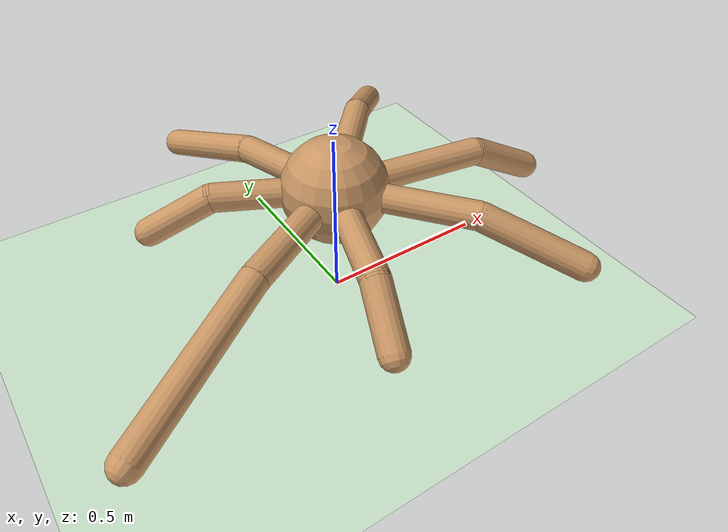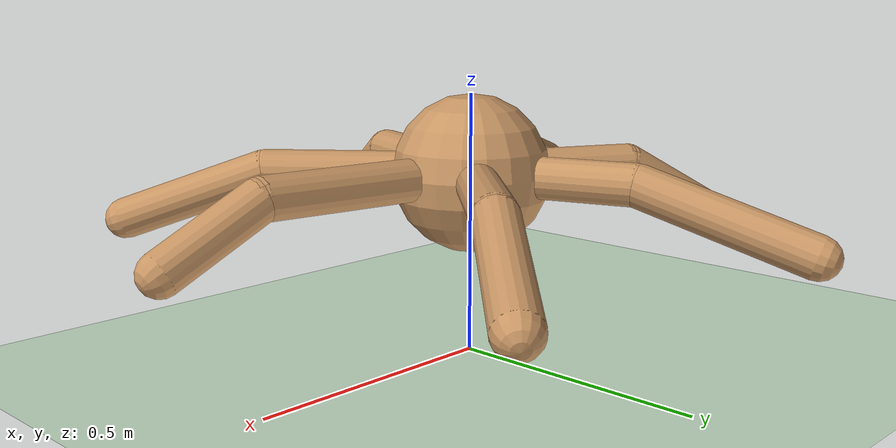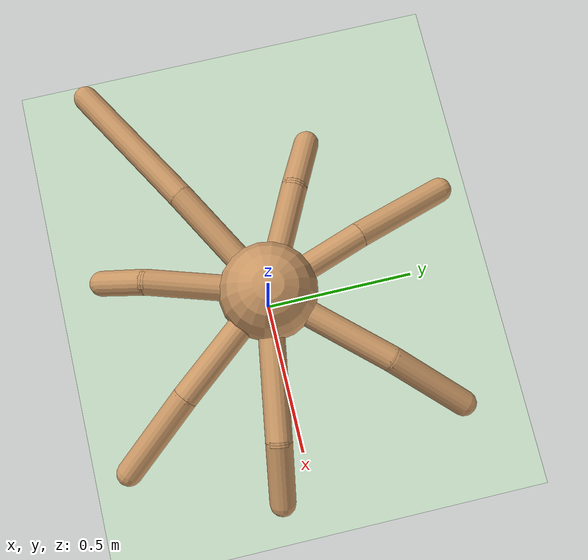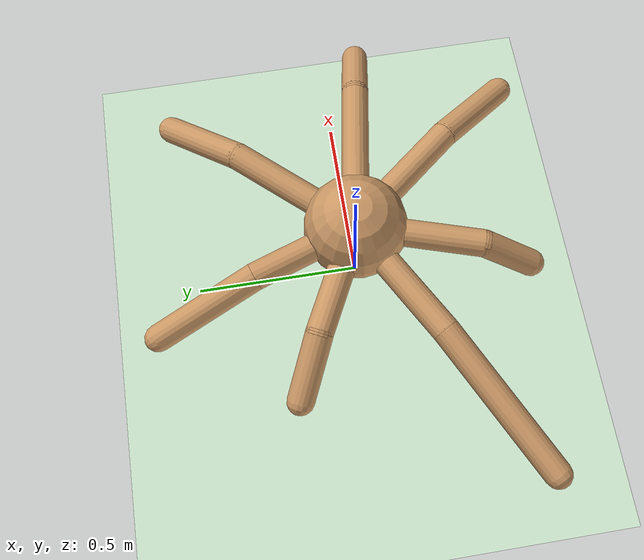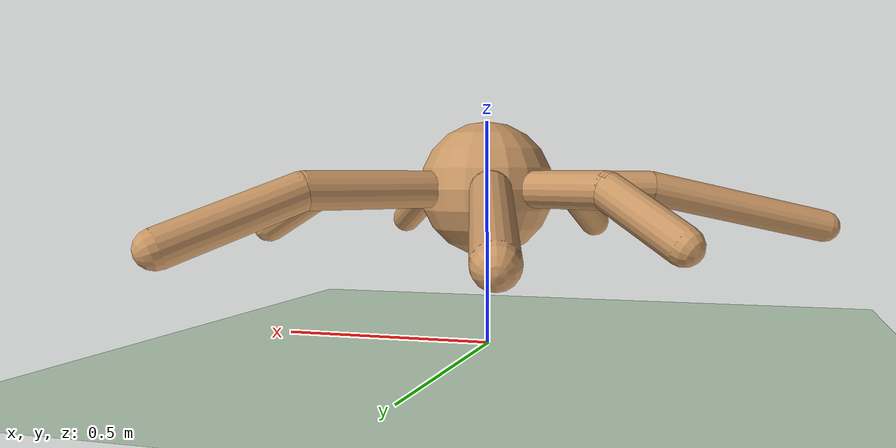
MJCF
<mujoco model="mutant_ant">
  <compiler angle="degree" coordinate="local" inertiafromgeom="true"/>
  <option integrator="RK4" timestep="0.01"/>
  <default>
    <joint armature="1" damping="1" limited="true"/>
    <geom conaffinity="1" condim="3" density="5.0" friction="1 0.5 0.5" margin="0.01" rgba="0.8 0.6 0.4 1"/>
  </default>
  <asset>
    <texture builtin="checker" height="512" name="texplane" rgb1=".2 .3 .4" rgb2=".1 0.15 0.2" type="2d" width="512"/>
    <material name="MatPlane" reflectance="0.5" shininess="1" specular="1" texrepeat="60 60" texture="texplane"/>
  </asset>
  <worldbody>
    <light cutoff="100" diffuse="1 1 1" dir="-0 0 -1.3" directional="true" exponent="1" pos="0 0 1.3" specular=".1 .1 .1"/>
    <geom conaffinity="1" condim="3" material="MatPlane" name="floor" pos="0 0 0" rgba="0.8 0.9 0.8 1" size="40 40 40" type="plane"/>
    <body name="torso" pos="0 0 0.35">
      <camera name="track" mode="trackcom" pos="0 -3 2.0" euler="60 0 0"/>
      <freejoint name="root"/>
      <geom name="torso_geom" pos="0 0 0" size="0.15" type="sphere"/>
      <body name="leg_0" pos="0 0 0" euler="0 0 -9.160">
        <geom fromto="0.0 0.0 0.0 0.1 0.0 0.0" name="aux_0_geom" size="0.04" type="capsule"/>
        <body name="leg_0_aux" pos="0.1 0.0 0">
          <joint axis="0 0 1" name="hip_0" pos="0.0 0.0 0.0" range="-14.891 14.724" type="hinge"/>
          <geom fromto="0.0 0.0 0.0 0.342 0.0 0.0" name="thigh_0_geom" size="0.04" type="capsule"/>
          <body pos="0.342 0.0 0" name="leg_0_ankle">
            <joint axis="0 1 0" name="ankle_0" pos="0.0 0.0 0.0" range="37.749 70.953" type="hinge"/>
            <geom fromto="0.0 0.0 0.0 0.183 0.0 -0.1" name="calf_0_geom" size="0.04" type="capsule"/>
          </body>
        </body>
      </body>
      <body name="leg_1" pos="0 0 0" euler="0 0 47.929">
        <geom fromto="0.0 0.0 0.0 0.1 0.0 0.0" name="aux_1_geom" size="0.04" type="capsule"/>
        <body name="leg_1_aux" pos="0.1 0.0 0">
          <joint axis="0 0 1" name="hip_1" pos="0.0 0.0 0.0" range="-16.743 11.692" type="hinge"/>
          <geom fromto="0.0 0.0 0.0 0.314 0.0 0.0" name="thigh_1_geom" size="0.04" type="capsule"/>
          <body pos="0.314 0.0 0" name="leg_1_ankle">
            <joint axis="0 1 0" name="ankle_1" pos="0.0 0.0 0.0" range="18.171 80.069" type="hinge"/>
            <geom fromto="0.0 0.0 0.0 0.263 0.0 -0.1" name="calf_1_geom" size="0.04" type="capsule"/>
          </body>
        </body>
      </body>
      <body name="leg_2" pos="0 0 0" euler="0 0 109.063">
        <geom fromto="0.0 0.0 0.0 0.1 0.0 0.0" name="aux_2_geom" size="0.04" type="capsule"/>
        <body name="leg_2_aux" pos="0.1 0.0 0">
          <joint axis="0 0 1" name="hip_2" pos="0.0 0.0 0.0" range="-23.850 37.498" type="hinge"/>
          <geom fromto="0.0 0.0 0.0 0.221 0.0 0.0" name="thigh_2_geom" size="0.04" type="capsule"/>
          <body pos="0.221 0.0 0" name="leg_2_ankle">
            <joint axis="0 1 0" name="ankle_2" pos="0.0 0.0 0.0" range="20.445 84.772" type="hinge"/>
            <geom fromto="0.0 0.0 0.0 0.316 0.0 -0.1" name="calf_2_geom" size="0.04" type="capsule"/>
          </body>
        </body>
      </body>
      <body name="leg_3" pos="0 0 0" euler="0 0 153.164">
        <geom fromto="0.0 0.0 0.0 0.1 0.0 0.0" name="aux_3_geom" size="0.04" type="capsule"/>
        <body name="leg_3_aux" pos="0.1 0.0 0">
          <joint axis="0 0 1" name="hip_3" pos="0.0 0.0 0.0" range="-30.433 18.432" type="hinge"/>
          <geom fromto="0.0 0.0 0.0 0.231 0.0 0.0" name="thigh_3_geom" size="0.04" type="capsule"/>
          <body pos="0.231 0.0 0" name="leg_3_ankle">
            <joint axis="0 1 0" name="ankle_3" pos="0.0 0.0 0.0" range="14.854 60.752" type="hinge"/>
            <geom fromto="0.0 0.0 0.0 0.177 0.0 -0.1" name="calf_3_geom" size="0.04" type="capsule"/>
          </body>
        </body>
      </body>
      <body name="leg_4" pos="0 0 0" euler="0 0 209.247">
        <geom fromto="0.0 0.0 0.0 0.1 0.0 0.0" name="aux_4_geom" size="0.04" type="capsule"/>
        <body name="leg_4_aux" pos="0.1 0.0 0">
          <joint axis="0 0 1" name="hip_4" pos="0.0 0.0 0.0" range="-27.783 18.304" type="hinge"/>
          <geom fromto="0.0 0.0 0.0 0.295 0.0 0.0" name="thigh_4_geom" size="0.04" type="capsule"/>
          <body pos="0.295 0.0 0" name="leg_4_ankle">
            <joint axis="0 1 0" name="ankle_4" pos="0.0 0.0 0.0" range="21.501 71.626" type="hinge"/>
            <geom fromto="0.0 0.0 0.0 0.478 0.0 -0.1" name="calf_4_geom" size="0.04" type="capsule"/>
          </body>
        </body>
      </body>
      <body name="leg_5" pos="0 0 0" euler="0 0 252.505">
        <geom fromto="0.0 0.0 0.0 0.1 0.0 0.0" name="aux_5_geom" size="0.04" type="capsule"/>
        <body name="leg_5_aux" pos="0.1 0.0 0">
          <joint axis="0 0 1" name="hip_5" pos="0.0 0.0 0.0" range="-34.636 39.848" type="hinge"/>
          <geom fromto="0.0 0.0 0.0 0.268 0.0 0.0" name="thigh_5_geom" size="0.04" type="capsule"/>
          <body pos="0.268 0.0 0" name="leg_5_ankle">
            <joint axis="0 1 0" name="ankle_5" pos="0.0 0.0 0.0" range="39.711 95.518" type="hinge"/>
            <geom fromto="0.0 0.0 0.0 0.150 0.0 -0.1" name="calf_5_geom" size="0.04" type="capsule"/>
          </body>
        </body>
      </body>
      <body name="leg_6" pos="0 0 0" euler="0 0 309.025">
        <geom fromto="0.0 0.0 0.0 0.1 0.0 0.0" name="aux_6_geom" size="0.04" type="capsule"/>
        <body name="leg_6_aux" pos="0.1 0.0 0">
          <joint axis="0 0 1" name="hip_6" pos="0.0 0.0 0.0" range="-37.998 31.708" type="hinge"/>
          <geom fromto="0.0 0.0 0.0 0.296 0.0 0.0" name="thigh_6_geom" size="0.04" type="capsule"/>
          <body pos="0.296 0.0 0" name="leg_6_ankle">
            <joint axis="0 1 0" name="ankle_6" pos="0.0 0.0 0.0" range="11.613 82.900" type="hinge"/>
            <geom fromto="0.0 0.0 0.0 0.282 0.0 -0.1" name="calf_6_geom" size="0.04" type="capsule"/>
          </body>
        </body>
      </body>
    </body>
  </worldbody>
  <actuator>
    <motor ctrllimited="true" ctrlrange="-1.0 1.0" joint="hip_0" gear="30"/>
    <motor ctrllimited="true" ctrlrange="-1.0 1.0" joint="ankle_0" gear="30"/>
    <motor ctrllimited="true" ctrlrange="-1.0 1.0" joint="hip_1" gear="30"/>
    <motor ctrllimited="true" ctrlrange="-1.0 1.0" joint="ankle_1" gear="30"/>
    <motor ctrllimited="true" ctrlrange="-1.0 1.0" joint="hip_2" gear="30"/>
    <motor ctrllimited="true" ctrlrange="-1.0 1.0" joint="ankle_2" gear="30"/>
    <motor ctrllimited="true" ctrlrange="-1.0 1.0" joint="hip_3" gear="30"/>
    <motor ctrllimited="true" ctrlrange="-1.0 1.0" joint="ankle_3" gear="30"/>
    <motor ctrllimited="true" ctrlrange="-1.0 1.0" joint="hip_4" gear="30"/>
    <motor ctrllimited="true" ctrlrange="-1.0 1.0" joint="ankle_4" gear="30"/>
    <motor ctrllimited="true" ctrlrange="-1.0 1.0" joint="hip_5" gear="30"/>
    <motor ctrllimited="true" ctrlrange="-1.0 1.0" joint="ankle_5" gear="30"/>
    <motor ctrllimited="true" ctrlrange="-1.0 1.0" joint="hip_6" gear="30"/>
    <motor ctrllimited="true" ctrlrange="-1.0 1.0" joint="ankle_6" gear="30"/>
  </actuator>
</mujoco>
